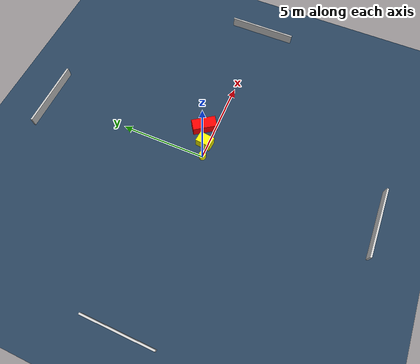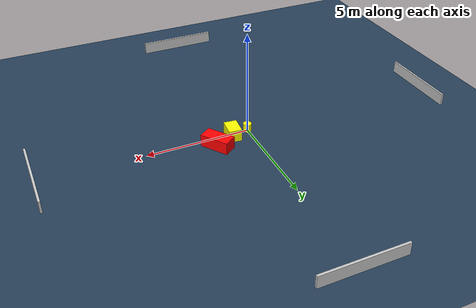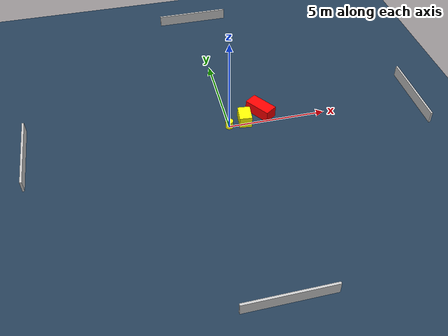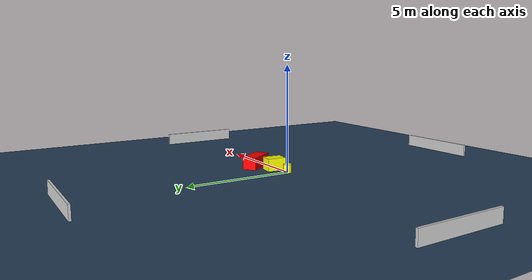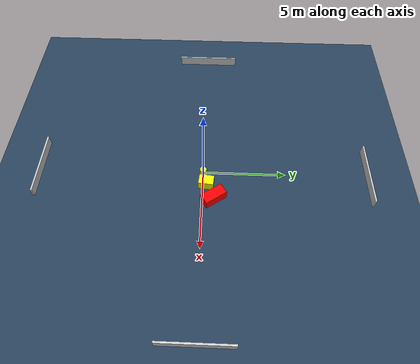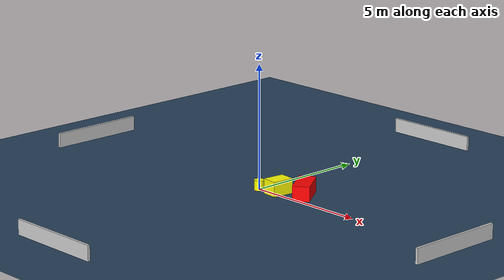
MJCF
<?xml version="1.0" ?>
<mujoco model="generated_environment">
  <option timestep="0.01" integrator="RK4" cone="elliptic"/>
  <default>
    <geom density="1"/>
  </default>
  <asset>
    <texture builtin="gradient" height="3072" name="skybox" rgb1="0.3 0.5 0.7" rgb2="0 0 0" type="skybox" width="512"/>
    <texture builtin="checker" height="300" name="groundplane" rgb1="0.2 0.3 0.4" rgb2="0.1 0.2 0.3" type="2d" width="300"/>
    <material name="groundplane" reflectance="0.2" texrepeat="5 5" texture="groundplane"/>
  </asset>
  <worldbody>
    <light dir="0 0 -1" directional="true" pos="0 0 1.5"/>
    <geom condim="3" friction="0.5 0.005 0.001" material="groundplane" name="floor" pos="0 0 0" size="0 0 0.05" type="plane"/>
    <body name="walls">
      <geom name="wall_1" condim="4" pos="-10.0 0.0 0.3" rgba="0.800000011920929 0.800000011920929 0.800000011920929 1.0" size="0.05 2.0 0.3" type="box"/>
      <geom name="wall_2" condim="4" pos="10.0 0.0 0.3" rgba="0.800000011920929 0.800000011920929 0.800000011920929 1.0" size="0.05 2.0 0.3" type="box"/>
      <geom name="wall_3" condim="4" pos="0.0 -10.0 0.3" rgba="0.800000011920929 0.800000011920929 0.800000011920929 1.0" size="2.0 0.05 0.3" type="box"/>
      <geom name="wall_4" condim="4" pos="0.0 10.0 0.3" rgba="0.800000011920929 0.800000011920929 0.800000011920929 1.0" size="2.0 0.05 0.3" type="box"/>
    </body>
    <body name="robot">
      <joint name="joint_x" type="slide" pos="0 0 0" axis="1 0 0"/>
      <joint name="joint_y" type="slide" pos="0 0 0" axis="0 1 0"/>
      <geom name="robot" type="cylinder" pos="0.0 0.0 0.2" size="0.2 0.2 0.0" mass="5.0" friction="1.0 0.005 0.0001" condim="4" rgba="1.0 1.0 0.0 1.0"/>
    </body>
    <body name="obstacle_1_movable">
      <geom name="obstacle_1_movable" condim="4" pos="0.8515847980025095 0.2076607776804976 0.3" euler="0 0 354.1345790932529" friction="0.0 0.005 0.001" rgba="1.0 1.0 0.0 1.0" size="0.31543452536021793 0.4428284875042014 0.3" type="box" mass="0.1"/>
      <joint type="free"/>
    </body>
    <body name="obstacle_2_static">
      <geom name="obstacle_2_static" condim="4" pos="1.8079688062220596 0.6668020215525543 0.3" euler="0 0 304.3918989669246" friction="0.0 0.005 0.001" rgba="1.0 0.0 0.0 1.0" size="0.7062692112625735 0.3379720360281421 0.3" type="box"/>
    </body>
  </worldbody>
  <actuator>
    <motor name="actuator_x" joint="joint_x" gear="1" ctrlrange="-1 1"/>
    <motor name="actuator_y" joint="joint_y" gear="1" ctrlrange="-1 1"/>
  </actuator>
</mujoco>
